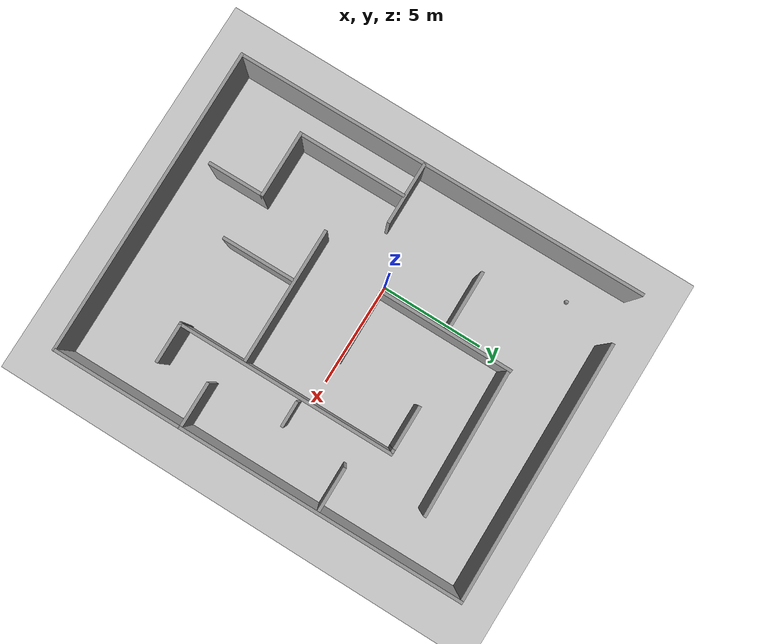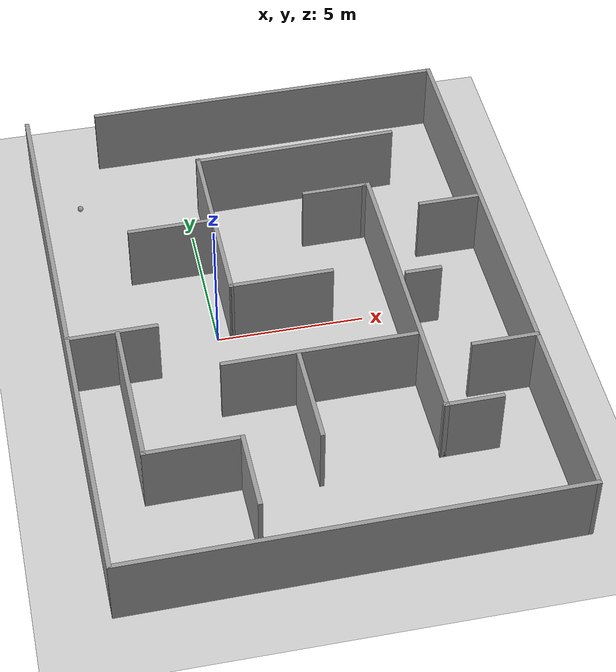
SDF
<sdf version="1.7">
 <world name="default">
  <light name="sun" type="directional">
   <pose>0 0 10 0 -0 0</pose>
   <diffuse>0.8 0.8 0.8 1</diffuse>
   <specular>0.2 0.2 0.2 1</specular>
   <attenuation>
    <range>1000</range>
    <constant>0.9</constant>
    <linear>0.01</linear>
    <quadratic>0.001</quadratic>
   </attenuation>
   <direction>-0.5 0.1 -0.9</direction>
   <spot><inner_angle>0</inner_angle><outer_angle>0</outer_angle><falloff>0</falloff></spot>
  </light>
  <model name="ground_plane">
   <static>1</static>
   <link name="link">
    <collision name="collision">
     <geometry><plane><normal>0 0 1</normal><size>100 100</size></plane></geometry>
     <surface>
      <contact><collide_bitmask>65535</collide_bitmask></contact>
      <friction><ode><mu>100</mu><mu2>50</mu2></ode></friction>
     </surface>
    </collision>
    <visual name="visual">
     <cast_shadows>0</cast_shadows>
     <geometry><plane><normal>0 0 1</normal><size>100 100</size></plane></geometry>
     <material>
      <script><uri>file://media/materials/scripts/gazebo.material</uri><name>Gazebo/Grey</name></script>
     </material>
    </visual>
   </link>
  </model>
  <gravity>0 0 -9.8</gravity>
  <magnetic_field>6e-06 2.3e-05 -4.2e-05</magnetic_field>
  <atmosphere type="adiabatic"/>
  <physics type="ode">
   <max_step_size>0.001</max_step_size>
   <real_time_factor>1</real_time_factor>
   <real_time_update_rate>1000</real_time_update_rate>
  </physics>
  <scene><ambient>0.4 0.4 0.4 1</ambient><background>0.7 0.7 0.7 1</background><shadows>1</shadows></scene>
  <spherical_coordinates>
   <surface_model>EARTH_WGS84</surface_model>
   <latitude_deg>0</latitude_deg>
   <longitude_deg>0</longitude_deg>
   <elevation>0</elevation>
   <heading_deg>0</heading_deg>
  </spherical_coordinates>
  <model name="maze">
   <pose>2.32167 -0.447404 0 0 0 -1.56177</pose>
   <link name="Wall_10">
    <collision name="Wall_10_Collision">
     <geometry><box><size>15 0.15 2.5</size></box></geometry>
     <pose>0 0 1.25 0 -0 0</pose>
    </collision>
    <visual name="Wall_10_Visual">
     <pose>0 0 1.25 0 -0 0</pose>
     <geometry><box><size>15 0.15 2.5</size></box></geometry>
     <material>
      <script><uri>file://media/materials/scripts/gazebo.material</uri><name>Gazebo/Grey</name></script>
      <ambient>1 1 1 1</ambient>
     </material>
     <meta><layer>0</layer></meta>
    </visual>
    <pose>9.925 0 0 0 -0 1.5708</pose>
   </link>
   <link name="Wall_11">
    <collision name="Wall_11_Collision">
     <geometry><box><size>20 0.15 2.5</size></box></geometry>
     <pose>0 0 1.25 0 -0 0</pose>
    </collision>
    <visual name="Wall_11_Visual">
     <pose>0 0 1.25 0 -0 0</pose>
     <geometry><box><size>20 0.15 2.5</size></box></geometry>
     <material>
      <script><uri>file://media/materials/scripts/gazebo.material</uri><name>Gazebo/Grey</name></script>
      <ambient>1 1 1 1</ambient>
     </material>
     <meta><layer>0</layer></meta>
    </visual>
    <pose>-0 7.425 0 0 -0 3.14159</pose>
   </link>
   <link name="Wall_12">
    <collision name="Wall_12_Collision">
     <geometry><box><size>12.5 0.15 2.5</size></box></geometry>
     <pose>0 0 1.25 0 -0 0</pose>
    </collision>
    <visual name="Wall_12_Visual">
     <pose>0 0 1.25 0 -0 0</pose>
     <geometry><box><size>12.5 0.15 2.5</size></box></geometry>
     <material>
      <script><uri>file://media/materials/scripts/gazebo.material</uri><name>Gazebo/Grey</name></script>
      <ambient>1 1 1 1</ambient>
     </material>
     <meta><layer>0</layer></meta>
    </visual>
    <pose>-9.925 1.25 0 0 -0 -1.5708</pose>
   </link>
   <link name="Wall_21">
    <collision name="Wall_21_Collision">
     <geometry><box><size>2.25 0.15 2.5</size></box></geometry>
     <pose>0 0 1.25 0 -0 0</pose>
    </collision>
    <visual name="Wall_21_Visual">
     <pose>0 0 1.25 0 -0 0</pose>
     <geometry><box><size>2.25 0.15 2.5</size></box></geometry>
     <material>
      <script><uri>file://media/materials/scripts/gazebo.material</uri><name>Gazebo/Grey</name></script>
      <ambient>1 1 1 1</ambient>
     </material>
     <meta><layer>0</layer></meta>
    </visual>
    <pose>3.68823 6.34551 0 0 -0 -1.5708</pose>
   </link>
   <link name="Wall_23">
    <collision name="Wall_23_Collision">
     <geometry><box><size>2.25 0.15 2.5</size></box></geometry>
     <pose>0 0 1.25 0 -0 0</pose>
    </collision>
    <visual name="Wall_23_Visual">
     <pose>0 0 1.25 0 -0 0</pose>
     <geometry><box><size>2.25 0.15 2.5</size></box></geometry>
     <material>
      <script><uri>file://media/materials/scripts/gazebo.material</uri><name>Gazebo/Grey</name></script>
      <ambient>1 1 1 1</ambient>
     </material>
     <meta><layer>0</layer></meta>
    </visual>
    <pose>-3.01574 6.37244 0 0 -0 -1.5708</pose>
   </link>
   <link name="Wall_25">
    <collision name="Wall_25_Collision">
     <geometry><box><size>7.11194 0.15 2.5</size></box></geometry>
     <pose>0 0 1.25 0 -0 0</pose>
    </collision>
    <visual name="Wall_25_Visual">
     <pose>0 0 1.25 0 -0 0</pose>
     <geometry><box><size>7.11194 0.15 2.5</size></box></geometry>
     <material>
      <script><uri>file://media/materials/scripts/gazebo.material</uri><name>Gazebo/Grey</name></script>
      <ambient>1 1 1 1</ambient>
     </material>
     <meta><layer>0</layer></meta>
    </visual>
    <pose>-6.81785 1.70714 0 0 -0 -1.55702</pose>
   </link>
   <link name="Wall_26">
    <collision name="Wall_26_Collision">
     <geometry><box><size>6.45919 0.15 2.5</size></box></geometry>
     <pose>0 0 1.25 0 -0 0</pose>
    </collision>
    <visual name="Wall_26_Visual">
     <pose>0 0 1.25 0 -0 0</pose>
     <geometry><box><size>6.45919 0.15 2.5</size></box></geometry>
     <material>
      <script><uri>file://media/materials/scripts/gazebo.material</uri><name>Gazebo/Grey</name></script>
      <ambient>1 1 1 1</ambient>
     </material>
     <meta><layer>0</layer></meta>
    </visual>
    <pose>-3.65631 -1.79397 0 0 -0 -0.00649</pose>
   </link>
   <link name="Wall_27">
    <collision name="Wall_27_Collision">
     <geometry><box><size>3.5 0.15 2.5</size></box></geometry>
     <pose>0 0 1.25 0 -0 0</pose>
    </collision>
    <visual name="Wall_27_Visual">
     <pose>0 0 1.25 0 -0 0</pose>
     <geometry><box><size>3.5 0.15 2.5</size></box></geometry>
     <material>
      <script><uri>file://media/materials/scripts/gazebo.material</uri><name>Gazebo/Grey</name></script>
      <ambient>1 1 1 1</ambient>
     </material>
     <meta><layer>0</layer></meta>
    </visual>
    <pose>-0.501782 -0.098498 0 0 -0 1.5708</pose>
   </link>
   <link name="Wall_29">
    <collision name="Wall_29_Collision">
     <geometry><box><size>2.25 0.15 2.5</size></box></geometry>
     <pose>0 0 1.25 0 -0 0</pose>
    </collision>
    <visual name="Wall_29_Visual">
     <pose>0 0 1.25 0 -0 0</pose>
     <geometry><box><size>2.25 0.15 2.5</size></box></geometry>
     <material>
      <script><uri>file://media/materials/scripts/gazebo.material</uri><name>Gazebo/Grey</name></script>
      <ambient>1 1 1 1</ambient>
     </material>
     <meta><layer>0</layer></meta>
    </visual>
    <pose>-4.36191 2.57618 0 0 -0 1.5708</pose>
   </link>
   <link name="Wall_30">
    <collision name="Wall_30_Collision">
     <geometry><box><size>0.254316 0.15 2.5</size></box></geometry>
     <pose>0 0 1.25 0 -0 0</pose>
    </collision>
    <visual name="Wall_30_Visual">
     <pose>0 0 1.25 0 -0 0</pose>
     <geometry><box><size>0.254316 0.15 2.5</size></box></geometry>
     <material>
      <script><uri>file://media/materials/scripts/gazebo.material</uri><name>Gazebo/Grey</name></script>
      <ambient>1 1 1 1</ambient>
     </material>
     <meta><layer>0</layer></meta>
    </visual>
    <pose>-4.36191 3.67833 0 0 -0 1.5708</pose>
   </link>
   <link name="Wall_31">
    <collision name="Wall_31_Collision">
     <geometry><box><size>10.5 0.15 2.5</size></box></geometry>
     <pose>0 0 1.25 0 -0 0</pose>
    </collision>
    <visual name="Wall_31_Visual">
     <pose>0 0 1.25 0 -0 0</pose>
     <geometry><box><size>10.5 0.15 2.5</size></box></geometry>
     <material>
      <script><uri>file://media/materials/scripts/gazebo.material</uri><name>Gazebo/Grey</name></script>
      <ambient>1 1 1 1</ambient>
     </material>
     <meta><layer>0</layer></meta>
    </visual>
    <pose>0.813085 3.77144 0 0 -0 0</pose>
   </link>
   <link name="Wall_32">
    <collision name="Wall_32_Collision">
     <geometry><box><size>1.99568 0.15 2.5</size></box></geometry>
     <pose>0 0 1.25 0 -0 0</pose>
    </collision>
    <visual name="Wall_32_Visual">
     <pose>0 0 1.25 0 -0 0</pose>
     <geometry><box><size>1.99568 0.15 2.5</size></box></geometry>
     <material>
      <script><uri>file://media/materials/scripts/gazebo.material</uri><name>Gazebo/Grey</name></script>
      <ambient>1 1 1 1</ambient>
     </material>
     <meta><layer>0</layer></meta>
    </visual>
    <pose>5.98808 4.65333 0 0 -0 1.5708</pose>
   </link>
   <link name="Wall_34">
    <collision name="Wall_34_Collision">
     <geometry><box><size>1.25 0.15 2.5</size></box></geometry>
     <pose>0 0 1.25 0 -0 0</pose>
    </collision>
    <visual name="Wall_34_Visual">
     <pose>0 0 1.25 0 -0 0</pose>
     <geometry><box><size>1.25 0.15 2.5</size></box></geometry>
     <material>
      <script><uri>file://media/materials/scripts/gazebo.material</uri><name>Gazebo/Grey</name></script>
      <ambient>1 1 1 1</ambient>
     </material>
     <meta><layer>0</layer></meta>
    </visual>
    <pose>0.107396 4.58007 0 0 -0 1.5708</pose>
   </link>
   <link name="Wall_36">
    <collision name="Wall_36_Collision">
     <geometry><box><size>6.5 0.15 2.5</size></box></geometry>
     <pose>0 0 1.25 0 -0 0</pose>
    </collision>
    <visual name="Wall_36_Visual">
     <pose>0 0 1.25 0 -0 0</pose>
     <geometry><box><size>6.5 0.15 2.5</size></box></geometry>
     <material>
      <script><uri>file://media/materials/scripts/gazebo.material</uri><name>Gazebo/Grey</name></script>
      <ambient>1 1 1 1</ambient>
     </material>
     <meta><layer>0</layer></meta>
    </visual>
    <pose>2.85248 0.434942 0 0 -0 -1.5708</pose>
   </link>
   <link name="Wall_38">
    <collision name="Wall_38_Collision">
     <geometry><box><size>3.5 0.15 2.5</size></box></geometry>
     <pose>0 0 1.25 0 -0 0</pose>
    </collision>
    <visual name="Wall_38_Visual">
     <pose>0 0 1.25 0 -0 0</pose>
     <geometry><box><size>3.5 0.15 2.5</size></box></geometry>
     <material>
      <script><uri>file://media/materials/scripts/gazebo.material</uri><name>Gazebo/Grey</name></script>
      <ambient>1 1 1 1</ambient>
     </material>
     <meta><layer>0</layer></meta>
    </visual>
    <pose>4.66322 -0.277702 0 0 -0 0</pose>
   </link>
   <link name="Wall_40">
    <collision name="Wall_40_Collision">
     <geometry><box><size>3 0.15 2.5</size></box></geometry>
     <pose>0 0 1.25 0 -0 0</pose>
    </collision>
    <visual name="Wall_40_Visual">
     <pose>0 0 1.25 0 -0 0</pose>
     <geometry><box><size>3 0.15 2.5</size></box></geometry>
     <material>
      <script><uri>file://media/materials/scripts/gazebo.material</uri><name>Gazebo/Grey</name></script>
      <ambient>1 1 1 1</ambient>
     </material>
     <meta><layer>0</layer></meta>
    </visual>
    <pose>-3.72108 -3.25434 0 0 -0 -1.5708</pose>
   </link>
   <link name="Wall_42">
    <collision name="Wall_42_Collision">
     <geometry><box><size>3 0.15 2.5</size></box></geometry>
     <pose>0 0 1.25 0 -0 0</pose>
    </collision>
    <visual name="Wall_42_Visual">
     <pose>0 0 1.25 0 -0 0</pose>
     <geometry><box><size>3 0.15 2.5</size></box></geometry>
     <material>
      <script><uri>file://media/materials/scripts/gazebo.material</uri><name>Gazebo/Grey</name></script>
      <ambient>1 1 1 1</ambient>
     </material>
     <meta><layer>0</layer></meta>
    </visual>
    <pose>0.763464 -5.95003 0 0 -0 1.5708</pose>
   </link>
   <link name="Wall_44">
    <collision name="Wall_44_Collision">
     <geometry><box><size>5.25 0.15 2.5</size></box></geometry>
     <pose>0 0 1.25 0 -0 0</pose>
    </collision>
    <visual name="Wall_44_Visual">
     <pose>0 0 1.25 0 -0 0</pose>
     <geometry><box><size>5.25 0.15 2.5</size></box></geometry>
     <material>
      <script><uri>file://media/materials/scripts/gazebo.material</uri><name>Gazebo/Grey</name></script>
      <ambient>1 1 1 1</ambient>
     </material>
     <meta><layer>0</layer></meta>
    </visual>
    <pose>3.40394 -5.79162 0 0 -0 0</pose>
   </link>
   <link name="Wall_45">
    <collision name="Wall_45_Collision">
     <geometry><box><size>3.25 0.15 2.5</size></box></geometry>
     <pose>0 0 1.25 0 -0 0</pose>
    </collision>
    <visual name="Wall_45_Visual">
     <pose>0 0 1.25 0 -0 0</pose>
     <geometry><box><size>3.25 0.15 2.5</size></box></geometry>
     <material>
      <script><uri>file://media/materials/scripts/gazebo.material</uri><name>Gazebo/Grey</name></script>
      <ambient>1 1 1 1</ambient>
     </material>
     <meta><layer>0</layer></meta>
    </visual>
    <pose>5.95394 -4.24162 0 0 -0 1.5708</pose>
   </link>
   <link name="Wall_46">
    <collision name="Wall_46_Collision">
     <geometry><box><size>2.75 0.15 2.5</size></box></geometry>
     <pose>0 0 1.25 0 -0 0</pose>
    </collision>
    <visual name="Wall_46_Visual">
     <pose>0 0 1.25 0 -0 0</pose>
     <geometry><box><size>2.75 0.15 2.5</size></box></geometry>
     <material>
      <script><uri>file://media/materials/scripts/gazebo.material</uri><name>Gazebo/Grey</name></script>
      <ambient>1 1 1 1</ambient>
     </material>
     <meta><layer>0</layer></meta>
    </visual>
    <pose>7.25394 -2.69162 0 0 -0 0</pose>
   </link>
   <link name="Wall_8">
    <collision name="Wall_8_Collision">
     <geometry><box><size>20 0.15 2.5</size></box></geometry>
     <pose>0 0 1.25 0 -0 0</pose>
    </collision>
    <visual name="Wall_8_Visual">
     <pose>0 0 1.25 0 -0 0</pose>
     <geometry><box><size>20 0.15 2.5</size></box></geometry>
     <material>
      <script><uri>file://media/materials/scripts/gazebo.material</uri><name>Gazebo/Grey</name></script>
      <ambient>1 1 1 1</ambient>
     </material>
     <meta><layer>0</layer></meta>
    </visual>
    <pose>-0 -7.425 0 0 -0 0</pose>
   </link>
   <static>1</static>
  </model>
  <model name="my_ball">
   <link name="link_0">
    <inertial>
     <mass>1</mass>
     <inertia><ixx>0.1</ixx><ixy>0</ixy><ixz>0</ixz><iyy>0.1</iyy><iyz>0</iyz><izz>0.1</izz></inertia>
    </inertial>
    <visual name="visual">
     <geometry><sphere><radius>0.1</radius></sphere></geometry>
     <material>
      <lighting>1</lighting>
      <script><uri>file://media/materials/scripts/gazebo.material</uri><name>Gazebo/Grey</name></script>
      <shader type="pixel"><normal_map>__default__</normal_map></shader>
      <ambient>1 1 1 1</ambient>
      <diffuse>1 1 1 1</diffuse>
      <specular>1 1 1 1</specular>
      <emissive>1 1 1 1</emissive>
     </material>
    </visual>
    <collision name="collision">
     <geometry><sphere><radius>0.1</radius></sphere></geometry>
     <surface>
      <friction>
       <ode><mu>1</mu><mu2>1</mu2><fdir1>0 0 0</fdir1><slip1>0</slip1><slip2>0</slip2></ode>
       <torsional>
        <coefficient>1</coefficient>
        <patch_radius>0</patch_radius>
        <surface_radius>0</surface_radius>
        <use_patch_radius>1</use_patch_radius>
        <ode><slip>0</slip></ode>
       </torsional>
      </friction>
      <bounce><restitution_coefficient>0</restitution_coefficient><threshold>1e+06</threshold></bounce>
      <contact>
       <collide_without_contact>0</collide_without_contact>
       <collide_without_contact_bitmask>1</collide_without_contact_bitmask>
       <collide_bitmask>1</collide_bitmask>
       <ode>
        <soft_cfm>0</soft_cfm>
        <soft_erp>0.2</soft_erp>
        <kp>1e+13</kp>
        <kd>1</kd>
        <max_vel>0.01</max_vel>
        <min_depth>0</min_depth>
       </ode>
       <bullet>
        <split_impulse>1</split_impulse>
        <split_impulse_penetration_threshold>-0.01</split_impulse_penetration_threshold>
        <soft_cfm>0</soft_cfm>
        <soft_erp>0.2</soft_erp>
        <kp>1e+13</kp>
        <kd>1</kd>
       </bullet>
      </contact>
     </surface>
    </collision>
   </link>
   <static>0</static>
   <pose>-3.73822 7.25809 0.1 0 -0 0</pose>
  </model>
 </world>
</sdf>
